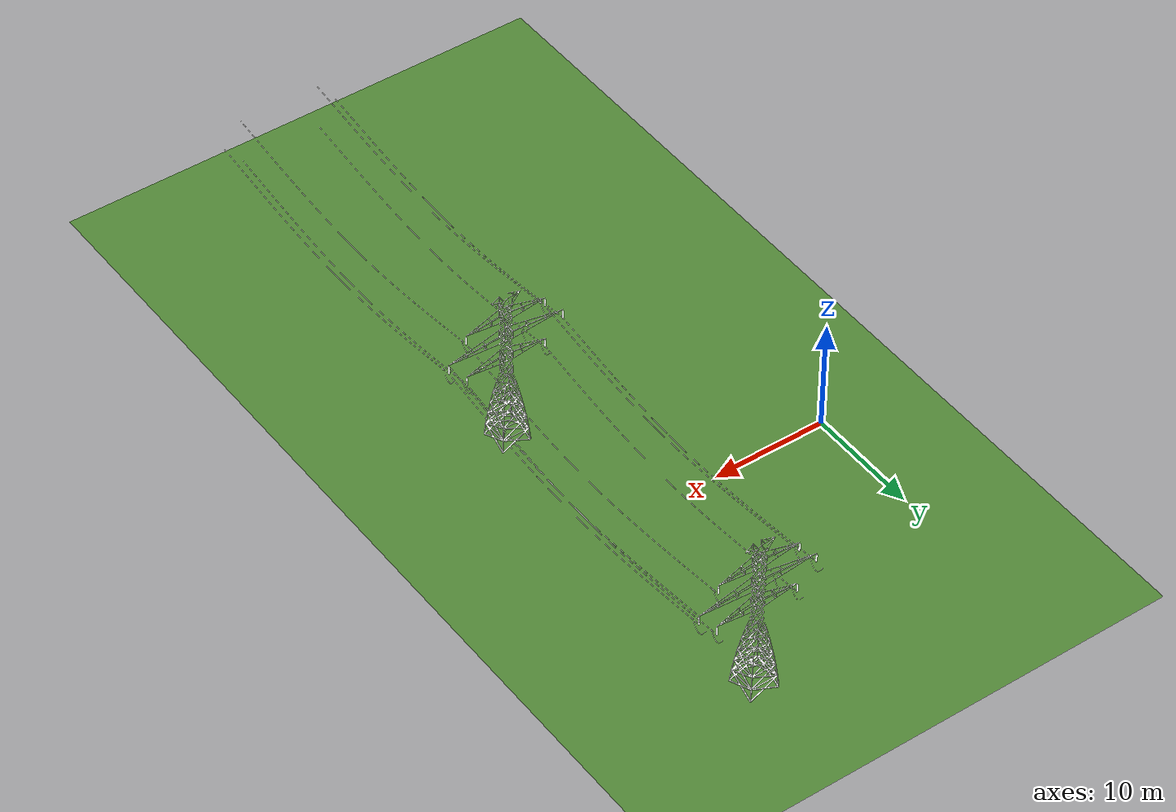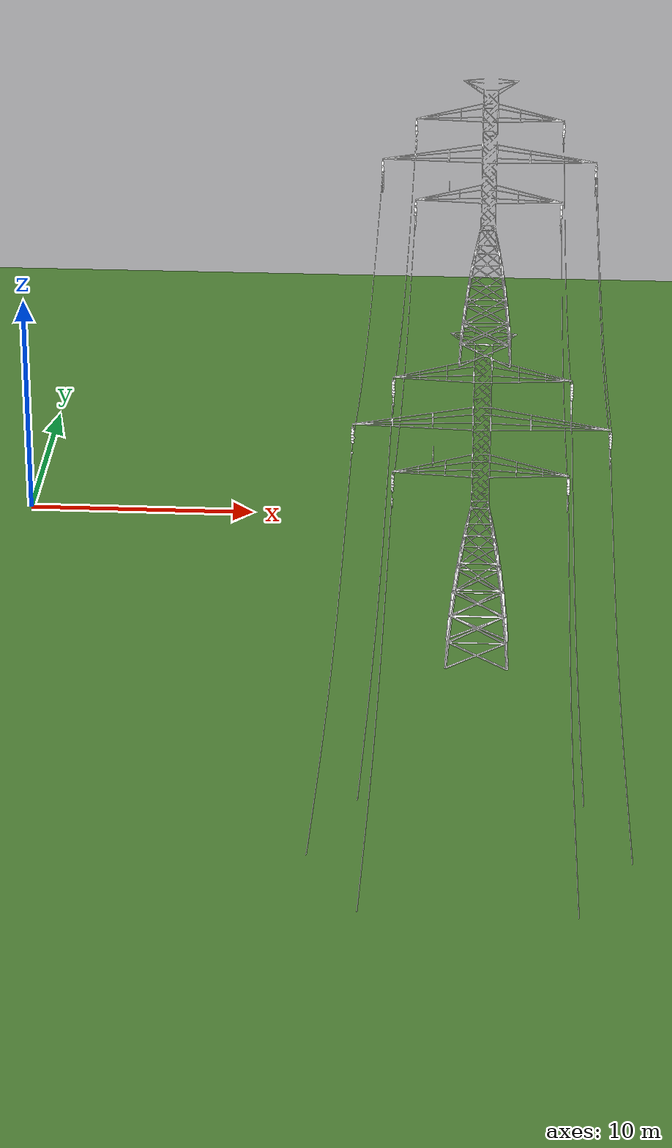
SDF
<?xml version="1.0" encoding="UTF-8"?>
<sdf version="1.9">
  <world name="powerline">

    <physics type="ode">
      <max_step_size>0.004</max_step_size>
      <real_time_factor>1.0</real_time_factor>
      <real_time_update_rate>250</real_time_update_rate>
    </physics>
    <gravity>0 0 -9.8</gravity>
    <magnetic_field>6e-06 2.3e-05 -4.2e-05</magnetic_field>
    <atmosphere type="adiabatic"/>

    <scene>
      <grid>false</grid>
      <ambient>0.6 0.6 0.6 1</ambient>
      <background>0.53 0.81 0.98 1</background>
      <shadows>false</shadows>
      <sky>
        <time>10</time>
        <sunrise>6</sunrise>
        <sunset>20</sunset>
        <clouds>
          <speed>12</speed>
          <mean_size>0.5</mean_size>
          <ambient>0.8 0.8 0.8 1</ambient>
        </clouds>
      </sky>
    </scene>

    <!-- Textured ground plane -->
    <model name="ground_plane">
      <static>true</static>
      <link name="link">
        <collision name="collision">
          <geometry>
            <plane>
              <normal>0 0 1</normal>
              <size>1 1</size>
            </plane>
          </geometry>
          <surface>
            <friction><ode/></friction>
            <bounce/>
            <contact/>
          </surface>
        </collision>
        <visual name="visual">
          <geometry>
            <plane>
              <normal>0 0 1</normal>
              <size>1000 1000</size>
            </plane>
          </geometry>
          <material>
            <ambient>0.3 0.5 0.2 1</ambient>
            <diffuse>0.3 0.5 0.2 1</diffuse>
            <specular>0.1 0.1 0.1 1</specular>
          </material>
        </visual>
        <pose>0 0 0 0 0 0</pose>
        <inertial>
          <pose>0 0 0 0 0 0</pose>
          <mass>1</mass>
          <inertia>
            <ixx>1</ixx><ixy>0</ixy><ixz>0</ixz>
            <iyy>1</iyy><iyz>0</iyz><izz>1</izz>
          </inertia>
        </inertial>
        <enable_wind>false</enable_wind>
      </link>
      <pose>0 0 0 0 0 0</pose>
      <self_collide>false</self_collide>
    </model>

    <!-- Sun lighting -->
    <light name="sunUTC" type="directional">
      <pose>0 0 500 0 0 0</pose>
      <cast_shadows>false</cast_shadows>
      <intensity>1</intensity>
      <direction>-0.8 0.2 -0.5</direction>
      <diffuse>1.0 0.95 0.8 1</diffuse>
      <specular>0.5 0.5 0.5 1</specular>
      <attenuation>
        <range>2000</range>
        <linear>0</linear>
        <constant>1</constant>
        <quadratic>0</quadratic>
      </attenuation>
      <spot>
        <inner_angle>0</inner_angle>
        <outer_angle>0</outer_angle>
        <falloff>0</falloff>
      </spot>
    </light>

    <spherical_coordinates>
      <surface_model>EARTH_WGS84</surface_model>
      <world_frame_orientation>ENU</world_frame_orientation>
      <latitude_deg>47.397971057728974</latitude_deg>
      <longitude_deg> 8.546163739800146</longitude_deg>
      <elevation>0</elevation>
    </spherical_coordinates>

    <!-- Transmission tower -->
    <include>
      <uri>model://transmission_tower</uri>
      <name>tower_1</name>
      <pose>20 0 0 1.5708 0 0</pose>
    </include>

  </world>
</sdf>

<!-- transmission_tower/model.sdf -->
<sdf version="1.9">
  <model name="transmission_tower">
    <static>true</static>
    <link name="link">
      <visual name="visual">
        <geometry>
          <mesh><uri>model://transmission_tower/meshes/tower_model_3.dae</uri></mesh>
        </geometry>
      </visual>

      <!-- ===== Tower legs: 4 vertical boxes per tower (gaps between = passable) ===== -->
      <collision name="legA_pp"><pose>3.5 7.2 -16.5 0 0 0</pose><geometry><box><size>0.6 14.4 0.6</size></box></geometry></collision>
      <collision name="legA_pm"><pose>3.5 7.2 -19.5 0 0 0</pose><geometry><box><size>0.6 14.4 0.6</size></box></geometry></collision>
      <collision name="legA_mp"><pose>-3.5 7.2 -16.5 0 0 0</pose><geometry><box><size>0.6 14.4 0.6</size></box></geometry></collision>
      <collision name="legA_mm"><pose>-3.5 7.2 -19.5 0 0 0</pose><geometry><box><size>0.6 14.4 0.6</size></box></geometry></collision>
      <collision name="legB_pp"><pose>3.5 7.2 14.5 0 0 0</pose><geometry><box><size>0.6 14.4 0.6</size></box></geometry></collision>
      <collision name="legB_pm"><pose>3.5 7.2 11.5 0 0 0</pose><geometry><box><size>0.6 14.4 0.6</size></box></geometry></collision>
      <collision name="legB_mp"><pose>-3.5 7.2 14.5 0 0 0</pose><geometry><box><size>0.6 14.4 0.6</size></box></geometry></collision>
      <collision name="legB_mm"><pose>-3.5 7.2 11.5 0 0 0</pose><geometry><box><size>0.6 14.4 0.6</size></box></geometry></collision>

      <!-- ===== Conductors: thin cylinders spanning the two towers (Z -18..+13) ===== -->
      <!-- cylinder axis is local Z = the span direction, so no rotation needed -->
      <collision name="wire_L6"><pose>-3.5 6 -2.5 0 0 0</pose><geometry><cylinder><radius>0.12</radius><length>31</length></cylinder></geometry></collision>
      <collision name="wire_R6"><pose>3.5 6 -2.5 0 0 0</pose><geometry><cylinder><radius>0.12</radius><length>31</length></cylinder></geometry></collision>
      <collision name="wire_L8"><pose>-5 8.5 -2.5 0 0 0</pose><geometry><cylinder><radius>0.12</radius><length>31</length></cylinder></geometry></collision>
      <collision name="wire_R8"><pose>5 8.5 -2.5 0 0 0</pose><geometry><cylinder><radius>0.12</radius><length>31</length></cylinder></geometry></collision>
      <collision name="wire_L10"><pose>-3.5 10.5 -2.5 0 0 0</pose><geometry><cylinder><radius>0.12</radius><length>31</length></cylinder></geometry></collision>
      <collision name="wire_R10"><pose>3.5 10.5 -2.5 0 0 0</pose><geometry><cylinder><radius>0.12</radius><length>31</length></cylinder></geometry></collision>
      <collision name="wire_ground"><pose>0 13.8 -2.5 0 0 0</pose><geometry><cylinder><radius>0.1</radius><length>31</length></cylinder></geometry></collision>
    </link>
  </model>
</sdf>
